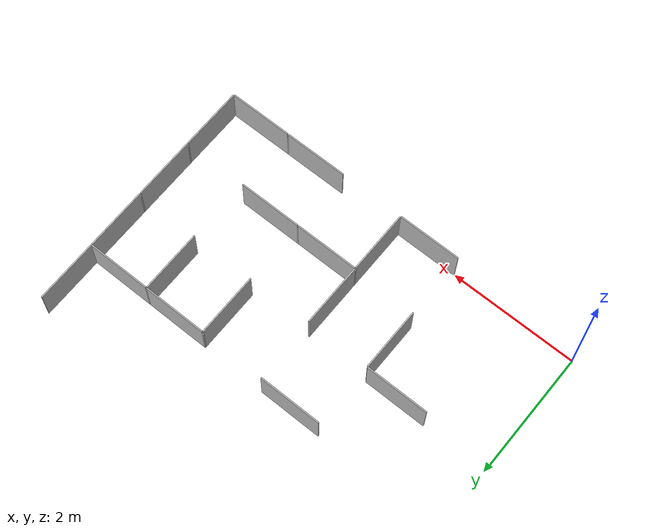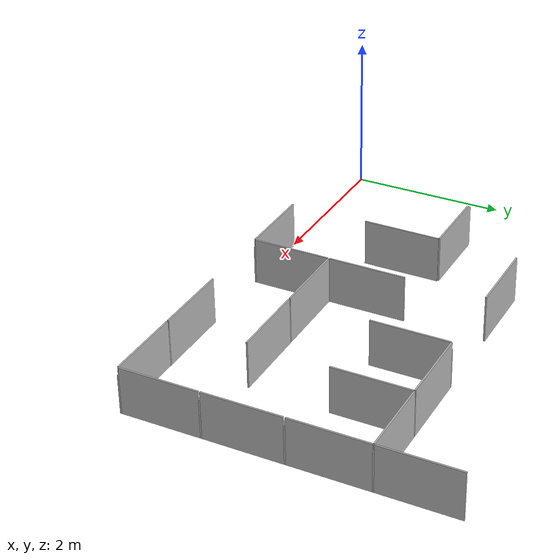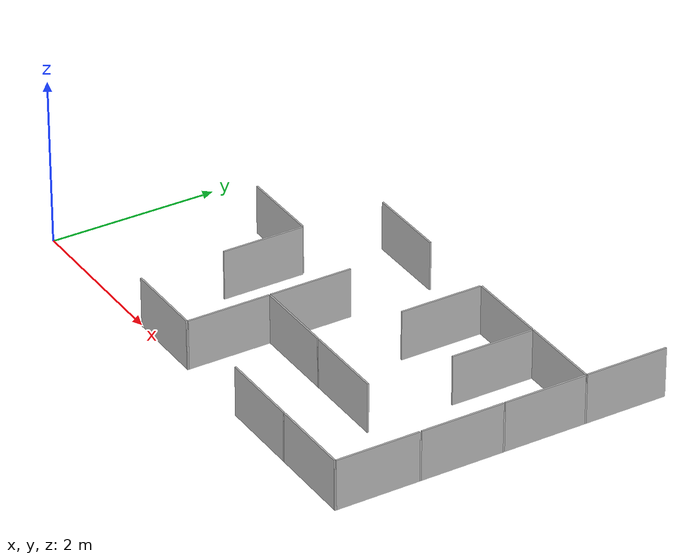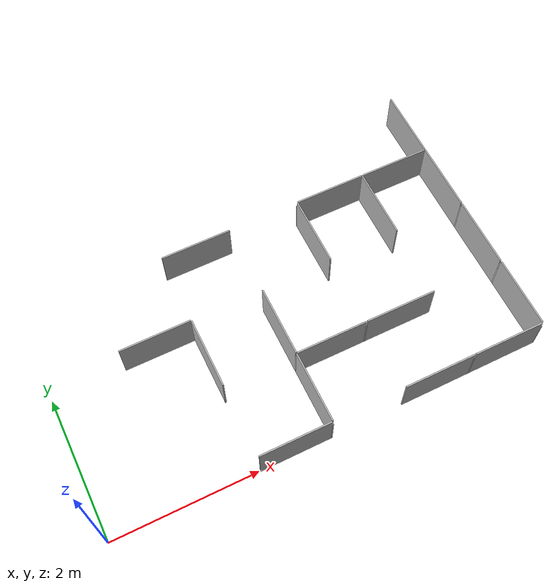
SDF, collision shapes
<sdf version="1.7">
 <model name="maze_midterm_validation">
  <link name="metal_joint_3_0_b::link">
   <pose>3 0 0.25 0 -0 0</pose>
   <visual name="visual_metal_joint_0">
    <geometry><box><size>0.02 0.02 0.5</size></box></geometry>
    <material>
     <script>
      <uri>model://metal_joint/materials/scripts</uri>
      <uri>model://metal_joint/materials/textures</uri>
      <name>metal_joint</name>
     </script>
     <shader type="pixel"/>
    </material>
   </visual>
   <collision name="metal_joint_01">
    <geometry><box><size>0.02 0.02 0.5</size></box></geometry>
    <surface>
     <friction>
      <ode><mu>1</mu><mu2>1</mu2><fdir1>0 0 0</fdir1><slip1>0</slip1><slip2>0</slip2></ode>
      <torsional>
       <coefficient>1</coefficient>
       <patch_radius>0</patch_radius>
       <surface_radius>0</surface_radius>
       <use_patch_radius>1</use_patch_radius>
       <ode><slip>0</slip></ode>
      </torsional>
     </friction>
     <bounce><restitution_coefficient>0</restitution_coefficient><threshold>1e+06</threshold></bounce>
     <contact>
      <collide_without_contact>0</collide_without_contact>
      <collide_without_contact_bitmask>1</collide_without_contact_bitmask>
      <collide_bitmask>1</collide_bitmask>
      <ode>
       <soft_cfm>0</soft_cfm>
       <soft_erp>0.2</soft_erp>
       <kp>1e+13</kp>
       <kd>1</kd>
       <max_vel>0.01</max_vel>
       <min_depth>0</min_depth>
      </ode>
      <bullet>
       <split_impulse>1</split_impulse>
       <split_impulse_penetration_threshold>-0.01</split_impulse_penetration_threshold>
       <soft_cfm>0</soft_cfm>
       <soft_erp>0.2</soft_erp>
       <kp>1e+13</kp>
       <kd>1</kd>
      </bullet>
     </contact>
    </surface>
   </collision>
  </link>
  <link name="metal_joint_3_1::link">
   <pose>3 1 0.25 0 -0 0</pose>
   <visual name="visual_metal_joint_0">
    <geometry><box><size>0.02 0.02 0.5</size></box></geometry>
    <material>
     <script>
      <uri>model://metal_joint/materials/scripts</uri>
      <uri>model://metal_joint/materials/textures</uri>
      <name>metal_joint</name>
     </script>
     <shader type="pixel"/>
    </material>
   </visual>
   <collision name="metal_joint_01">
    <geometry><box><size>0.02 0.02 0.5</size></box></geometry>
    <surface>
     <friction>
      <ode><mu>1</mu><mu2>1</mu2><fdir1>0 0 0</fdir1><slip1>0</slip1><slip2>0</slip2></ode>
      <torsional>
       <coefficient>1</coefficient>
       <patch_radius>0</patch_radius>
       <surface_radius>0</surface_radius>
       <use_patch_radius>1</use_patch_radius>
       <ode><slip>0</slip></ode>
      </torsional>
     </friction>
     <bounce><restitution_coefficient>0</restitution_coefficient><threshold>1e+06</threshold></bounce>
     <contact>
      <collide_without_contact>0</collide_without_contact>
      <collide_without_contact_bitmask>1</collide_without_contact_bitmask>
      <collide_bitmask>1</collide_bitmask>
      <ode>
       <soft_cfm>0</soft_cfm>
       <soft_erp>0.2</soft_erp>
       <kp>1e+13</kp>
       <kd>1</kd>
       <max_vel>0.01</max_vel>
       <min_depth>0</min_depth>
      </ode>
      <bullet>
       <split_impulse>1</split_impulse>
       <split_impulse_penetration_threshold>-0.01</split_impulse_penetration_threshold>
       <soft_cfm>0</soft_cfm>
       <soft_erp>0.2</soft_erp>
       <kp>1e+13</kp>
       <kd>1</kd>
      </bullet>
     </contact>
    </surface>
   </collision>
  </link>
  <link name="metal_joint_4_1::link">
   <pose>4 1 0.25 0 -0 0</pose>
   <visual name="visual_metal_joint_0">
    <geometry><box><size>0.02 0.02 0.5</size></box></geometry>
    <material>
     <script>
      <uri>model://metal_joint/materials/scripts</uri>
      <uri>model://metal_joint/materials/textures</uri>
      <name>metal_joint</name>
     </script>
     <shader type="pixel"/>
    </material>
   </visual>
   <collision name="metal_joint_01">
    <geometry><box><size>0.02 0.02 0.5</size></box></geometry>
    <surface>
     <friction>
      <ode><mu>1</mu><mu2>1</mu2><fdir1>0 0 0</fdir1><slip1>0</slip1><slip2>0</slip2></ode>
      <torsional>
       <coefficient>1</coefficient>
       <patch_radius>0</patch_radius>
       <surface_radius>0</surface_radius>
       <use_patch_radius>1</use_patch_radius>
       <ode><slip>0</slip></ode>
      </torsional>
     </friction>
     <bounce><restitution_coefficient>0</restitution_coefficient><threshold>1e+06</threshold></bounce>
     <contact>
      <collide_without_contact>0</collide_without_contact>
      <collide_without_contact_bitmask>1</collide_without_contact_bitmask>
      <collide_bitmask>1</collide_bitmask>
      <ode>
       <soft_cfm>0</soft_cfm>
       <soft_erp>0.2</soft_erp>
       <kp>1e+13</kp>
       <kd>1</kd>
       <max_vel>0.01</max_vel>
       <min_depth>0</min_depth>
      </ode>
      <bullet>
       <split_impulse>1</split_impulse>
       <split_impulse_penetration_threshold>-0.01</split_impulse_penetration_threshold>
       <soft_cfm>0</soft_cfm>
       <soft_erp>0.2</soft_erp>
       <kp>1e+13</kp>
       <kd>1</kd>
      </bullet>
     </contact>
    </surface>
   </collision>
  </link>
  <link name="metal_joint_4_3::link">
   <pose>4 3 0.25 0 -0 0</pose>
   <visual name="visual_metal_joint_0">
    <geometry><box><size>0.02 0.02 0.5</size></box></geometry>
    <material>
     <script>
      <uri>model://metal_joint/materials/scripts</uri>
      <uri>model://metal_joint/materials/textures</uri>
      <name>metal_joint</name>
     </script>
     <shader type="pixel"/>
    </material>
   </visual>
   <collision name="metal_joint_01">
    <geometry><box><size>0.02 0.02 0.5</size></box></geometry>
    <surface>
     <friction>
      <ode><mu>1</mu><mu2>1</mu2><fdir1>0 0 0</fdir1><slip1>0</slip1><slip2>0</slip2></ode>
      <torsional>
       <coefficient>1</coefficient>
       <patch_radius>0</patch_radius>
       <surface_radius>0</surface_radius>
       <use_patch_radius>1</use_patch_radius>
       <ode><slip>0</slip></ode>
      </torsional>
     </friction>
     <bounce><restitution_coefficient>0</restitution_coefficient><threshold>1e+06</threshold></bounce>
     <contact>
      <collide_without_contact>0</collide_without_contact>
      <collide_without_contact_bitmask>1</collide_without_contact_bitmask>
      <collide_bitmask>1</collide_bitmask>
      <ode>
       <soft_cfm>0</soft_cfm>
       <soft_erp>0.2</soft_erp>
       <kp>1e+13</kp>
       <kd>1</kd>
       <max_vel>0.01</max_vel>
       <min_depth>0</min_depth>
      </ode>
      <bullet>
       <split_impulse>1</split_impulse>
       <split_impulse_penetration_threshold>-0.01</split_impulse_penetration_threshold>
       <soft_cfm>0</soft_cfm>
       <soft_erp>0.2</soft_erp>
       <kp>1e+13</kp>
       <kd>1</kd>
      </bullet>
     </contact>
    </surface>
   </collision>
  </link>
  <link name="metal_joint_5_0_b::link">
   <pose>5 0 0.25 0 -0 0</pose>
   <visual name="visual_metal_joint_0">
    <geometry><box><size>0.02 0.02 0.5</size></box></geometry>
    <material>
     <script>
      <uri>model://metal_joint/materials/scripts</uri>
      <uri>model://metal_joint/materials/textures</uri>
      <name>metal_joint</name>
     </script>
     <shader type="pixel"/>
    </material>
   </visual>
   <collision name="metal_joint_01">
    <geometry><box><size>0.02 0.02 0.5</size></box></geometry>
    <surface>
     <friction>
      <ode><mu>1</mu><mu2>1</mu2><fdir1>0 0 0</fdir1><slip1>0</slip1><slip2>0</slip2></ode>
      <torsional>
       <coefficient>1</coefficient>
       <patch_radius>0</patch_radius>
       <surface_radius>0</surface_radius>
       <use_patch_radius>1</use_patch_radius>
       <ode><slip>0</slip></ode>
      </torsional>
     </friction>
     <bounce><restitution_coefficient>0</restitution_coefficient><threshold>1e+06</threshold></bounce>
     <contact>
      <collide_without_contact>0</collide_without_contact>
      <collide_without_contact_bitmask>1</collide_without_contact_bitmask>
      <collide_bitmask>1</collide_bitmask>
      <ode>
       <soft_cfm>0</soft_cfm>
       <soft_erp>0.2</soft_erp>
       <kp>1e+13</kp>
       <kd>1</kd>
       <max_vel>0.01</max_vel>
       <min_depth>0</min_depth>
      </ode>
      <bullet>
       <split_impulse>1</split_impulse>
       <split_impulse_penetration_threshold>-0.01</split_impulse_penetration_threshold>
       <soft_cfm>0</soft_cfm>
       <soft_erp>0.2</soft_erp>
       <kp>1e+13</kp>
       <kd>1</kd>
      </bullet>
     </contact>
    </surface>
   </collision>
  </link>
  <link name="metal_joint_5_3::link">
   <pose>5 3 0.25 0 -0 0</pose>
   <visual name="visual_metal_joint_0">
    <geometry><box><size>0.02 0.02 0.5</size></box></geometry>
    <material>
     <script>
      <uri>model://metal_joint/materials/scripts</uri>
      <uri>model://metal_joint/materials/textures</uri>
      <name>metal_joint</name>
     </script>
     <shader type="pixel"/>
    </material>
   </visual>
   <collision name="metal_joint_01">
    <geometry><box><size>0.02 0.02 0.5</size></box></geometry>
    <surface>
     <friction>
      <ode><mu>1</mu><mu2>1</mu2><fdir1>0 0 0</fdir1><slip1>0</slip1><slip2>0</slip2></ode>
      <torsional>
       <coefficient>1</coefficient>
       <patch_radius>0</patch_radius>
       <surface_radius>0</surface_radius>
       <use_patch_radius>1</use_patch_radius>
       <ode><slip>0</slip></ode>
      </torsional>
     </friction>
     <bounce><restitution_coefficient>0</restitution_coefficient><threshold>1e+06</threshold></bounce>
     <contact>
      <collide_without_contact>0</collide_without_contact>
      <collide_without_contact_bitmask>1</collide_without_contact_bitmask>
      <collide_bitmask>1</collide_bitmask>
      <ode>
       <soft_cfm>0</soft_cfm>
       <soft_erp>0.2</soft_erp>
       <kp>1e+13</kp>
       <kd>1</kd>
       <max_vel>0.01</max_vel>
       <min_depth>0</min_depth>
      </ode>
      <bullet>
       <split_impulse>1</split_impulse>
       <split_impulse_penetration_threshold>-0.01</split_impulse_penetration_threshold>
       <soft_cfm>0</soft_cfm>
       <soft_erp>0.2</soft_erp>
       <kp>1e+13</kp>
       <kd>1</kd>
      </bullet>
     </contact>
    </surface>
   </collision>
  </link>
  <link name="metal_joint_6_0_a::link">
   <pose>6 0 0.25 0 -0 0</pose>
   <visual name="visual_metal_joint_0">
    <geometry><box><size>0.02 0.02 0.5</size></box></geometry>
    <material>
     <script>
      <uri>model://metal_joint/materials/scripts</uri>
      <uri>model://metal_joint/materials/textures</uri>
      <name>metal_joint</name>
     </script>
     <shader type="pixel"/>
    </material>
   </visual>
   <collision name="metal_joint_01">
    <geometry><box><size>0.02 0.02 0.5</size></box></geometry>
    <surface>
     <friction>
      <ode><mu>1</mu><mu2>1</mu2><fdir1>0 0 0</fdir1><slip1>0</slip1><slip2>0</slip2></ode>
      <torsional>
       <coefficient>1</coefficient>
       <patch_radius>0</patch_radius>
       <surface_radius>0</surface_radius>
       <use_patch_radius>1</use_patch_radius>
       <ode><slip>0</slip></ode>
      </torsional>
     </friction>
     <bounce><restitution_coefficient>0</restitution_coefficient><threshold>1e+06</threshold></bounce>
     <contact>
      <collide_without_contact>0</collide_without_contact>
      <collide_without_contact_bitmask>1</collide_without_contact_bitmask>
      <collide_bitmask>1</collide_bitmask>
      <ode>
       <soft_cfm>0</soft_cfm>
       <soft_erp>0.2</soft_erp>
       <kp>1e+13</kp>
       <kd>1</kd>
       <max_vel>0.01</max_vel>
       <min_depth>0</min_depth>
      </ode>
      <bullet>
       <split_impulse>1</split_impulse>
       <split_impulse_penetration_threshold>-0.01</split_impulse_penetration_threshold>
       <soft_cfm>0</soft_cfm>
       <soft_erp>0.2</soft_erp>
       <kp>1e+13</kp>
       <kd>1</kd>
      </bullet>
     </contact>
    </surface>
   </collision>
  </link>
  <link name="metal_joint_6_1_a::link">
   <pose>6 1 0.25 0 -0 0</pose>
   <visual name="visual_metal_joint_0">
    <geometry><box><size>0.02 0.02 0.5</size></box></geometry>
    <material>
     <script>
      <uri>model://metal_joint/materials/scripts</uri>
      <uri>model://metal_joint/materials/textures</uri>
      <name>metal_joint</name>
     </script>
     <shader type="pixel"/>
    </material>
   </visual>
   <collision name="metal_joint_01">
    <geometry><box><size>0.02 0.02 0.5</size></box></geometry>
    <surface>
     <friction>
      <ode><mu>1</mu><mu2>1</mu2><fdir1>0 0 0</fdir1><slip1>0</slip1><slip2>0</slip2></ode>
      <torsional>
       <coefficient>1</coefficient>
       <patch_radius>0</patch_radius>
       <surface_radius>0</surface_radius>
       <use_patch_radius>1</use_patch_radius>
       <ode><slip>0</slip></ode>
      </torsional>
     </friction>
     <bounce><restitution_coefficient>0</restitution_coefficient><threshold>1e+06</threshold></bounce>
     <contact>
      <collide_without_contact>0</collide_without_contact>
      <collide_without_contact_bitmask>1</collide_without_contact_bitmask>
      <collide_bitmask>1</collide_bitmask>
      <ode>
       <soft_cfm>0</soft_cfm>
       <soft_erp>0.2</soft_erp>
       <kp>1e+13</kp>
       <kd>1</kd>
       <max_vel>0.01</max_vel>
       <min_depth>0</min_depth>
      </ode>
      <bullet>
       <split_impulse>1</split_impulse>
       <split_impulse_penetration_threshold>-0.01</split_impulse_penetration_threshold>
       <soft_cfm>0</soft_cfm>
       <soft_erp>0.2</soft_erp>
       <kp>1e+13</kp>
       <kd>1</kd>
      </bullet>
     </contact>
    </surface>
   </collision>
  </link>
  <link name="metal_joint_6_2_a::link">
   <pose>6 2 0.25 0 -0 0</pose>
   <visual name="visual_metal_joint_0">
    <geometry><box><size>0.02 0.02 0.5</size></box></geometry>
    <material>
     <script>
      <uri>model://metal_joint/materials/scripts</uri>
      <uri>model://metal_joint/materials/textures</uri>
      <name>metal_joint</name>
     </script>
     <shader type="pixel"/>
    </material>
   </visual>
   <collision name="metal_joint_01">
    <geometry><box><size>0.02 0.02 0.5</size></box></geometry>
    <surface>
     <friction>
      <ode><mu>1</mu><mu2>1</mu2><fdir1>0 0 0</fdir1><slip1>0</slip1><slip2>0</slip2></ode>
      <torsional>
       <coefficient>1</coefficient>
       <patch_radius>0</patch_radius>
       <surface_radius>0</surface_radius>
       <use_patch_radius>1</use_patch_radius>
       <ode><slip>0</slip></ode>
      </torsional>
     </friction>
     <bounce><restitution_coefficient>0</restitution_coefficient><threshold>1e+06</threshold></bounce>
     <contact>
      <collide_without_contact>0</collide_without_contact>
      <collide_without_contact_bitmask>1</collide_without_contact_bitmask>
      <collide_bitmask>1</collide_bitmask>
      <ode>
       <soft_cfm>0</soft_cfm>
       <soft_erp>0.2</soft_erp>
       <kp>1e+13</kp>
       <kd>1</kd>
       <max_vel>0.01</max_vel>
       <min_depth>0</min_depth>
      </ode>
      <bullet>
       <split_impulse>1</split_impulse>
       <split_impulse_penetration_threshold>-0.01</split_impulse_penetration_threshold>
       <soft_cfm>0</soft_cfm>
       <soft_erp>0.2</soft_erp>
       <kp>1e+13</kp>
       <kd>1</kd>
      </bullet>
     </contact>
    </surface>
   </collision>
  </link>
  <link name="metal_joint_6_3_a::link">
   <pose>6 3 0.25 0 -0 0</pose>
   <visual name="visual_metal_joint_0">
    <geometry><box><size>0.02 0.02 0.5</size></box></geometry>
    <material>
     <script>
      <uri>model://metal_joint/materials/scripts</uri>
      <uri>model://metal_joint/materials/textures</uri>
      <name>metal_joint</name>
     </script>
     <shader type="pixel"/>
    </material>
   </visual>
   <collision name="metal_joint_01">
    <geometry><box><size>0.02 0.02 0.5</size></box></geometry>
    <surface>
     <friction>
      <ode><mu>1</mu><mu2>1</mu2><fdir1>0 0 0</fdir1><slip1>0</slip1><slip2>0</slip2></ode>
      <torsional>
       <coefficient>1</coefficient>
       <patch_radius>0</patch_radius>
       <surface_radius>0</surface_radius>
       <use_patch_radius>1</use_patch_radius>
       <ode><slip>0</slip></ode>
      </torsional>
     </friction>
     <bounce><restitution_coefficient>0</restitution_coefficient><threshold>1e+06</threshold></bounce>
     <contact>
      <collide_without_contact>0</collide_without_contact>
      <collide_without_contact_bitmask>1</collide_without_contact_bitmask>
      <collide_bitmask>1</collide_bitmask>
      <ode>
       <soft_cfm>0</soft_cfm>
       <soft_erp>0.2</soft_erp>
       <kp>1e+13</kp>
       <kd>1</kd>
       <max_vel>0.01</max_vel>
       <min_depth>0</min_depth>
      </ode>
      <bullet>
       <split_impulse>1</split_impulse>
       <split_impulse_penetration_threshold>-0.01</split_impulse_penetration_threshold>
       <soft_cfm>0</soft_cfm>
       <soft_erp>0.2</soft_erp>
       <kp>1e+13</kp>
       <kd>1</kd>
      </bullet>
     </contact>
    </surface>
   </collision>
  </link>
  <link name="metal_plate_2_0_b::main">
   <pose>2 0 0 0 -0 1.571</pose>
   <visual name="visual">
    <pose>0.01 -0.01 0 3.14159 -1.57059 3.14159</pose>
    <geometry><mesh><scale>1 1 1</scale><uri>model://metal_plate/meshes/metal_plate.dae</uri></mesh></geometry>
    <material><shader type="pixel"/></material>
   </visual>
   <collision name="collision">
    <pose>0 -0.5 0.3 -1.571 -0 -1.571</pose>
    <geometry><box><size>0.98 0.6 0.02</size></box></geometry>
    <surface>
     <friction>
      <ode><mu>1</mu><mu2>1</mu2><fdir1>0 0 0</fdir1><slip1>0</slip1><slip2>0</slip2></ode>
      <torsional>
       <coefficient>1</coefficient>
       <patch_radius>0</patch_radius>
       <surface_radius>0</surface_radius>
       <use_patch_radius>1</use_patch_radius>
       <ode><slip>0</slip></ode>
      </torsional>
     </friction>
     <bounce><restitution_coefficient>0</restitution_coefficient><threshold>1e+06</threshold></bounce>
     <contact>
      <collide_without_contact>0</collide_without_contact>
      <collide_without_contact_bitmask>1</collide_without_contact_bitmask>
      <collide_bitmask>1</collide_bitmask>
      <ode>
       <soft_cfm>0</soft_cfm>
       <soft_erp>0.2</soft_erp>
       <kp>1e+13</kp>
       <kd>1</kd>
       <max_vel>0.01</max_vel>
       <min_depth>0</min_depth>
      </ode>
      <bullet>
       <split_impulse>1</split_impulse>
       <split_impulse_penetration_threshold>-0.01</split_impulse_penetration_threshold>
       <soft_cfm>0</soft_cfm>
       <soft_erp>0.2</soft_erp>
       <kp>1e+13</kp>
       <kd>1</kd>
      </bullet>
     </contact>
    </surface>
   </collision>
  </link>
  <link name="metal_plate_2_2_a::main">
   <pose>2 2 0 0 -0 0</pose>
   <visual name="visual">
    <pose>0.01 -0.01 0 3.14159 -1.57059 3.14159</pose>
    <geometry><mesh><scale>1 1 1</scale><uri>model://metal_plate/meshes/metal_plate.dae</uri></mesh></geometry>
    <material><shader type="pixel"/></material>
   </visual>
   <collision name="collision">
    <pose>0 -0.5 0.3 -1.571 -0 -1.571</pose>
    <geometry><box><size>0.98 0.6 0.02</size></box></geometry>
    <surface>
     <friction>
      <ode><mu>1</mu><mu2>1</mu2><fdir1>0 0 0</fdir1><slip1>0</slip1><slip2>0</slip2></ode>
      <torsional>
       <coefficient>1</coefficient>
       <patch_radius>0</patch_radius>
       <surface_radius>0</surface_radius>
       <use_patch_radius>1</use_patch_radius>
       <ode><slip>0</slip></ode>
      </torsional>
     </friction>
     <bounce><restitution_coefficient>0</restitution_coefficient><threshold>1e+06</threshold></bounce>
     <contact>
      <collide_without_contact>0</collide_without_contact>
      <collide_without_contact_bitmask>1</collide_without_contact_bitmask>
      <collide_bitmask>1</collide_bitmask>
      <ode>
       <soft_cfm>0</soft_cfm>
       <soft_erp>0.2</soft_erp>
       <kp>1e+13</kp>
       <kd>1</kd>
       <max_vel>0.01</max_vel>
       <min_depth>0</min_depth>
      </ode>
      <bullet>
       <split_impulse>1</split_impulse>
       <split_impulse_penetration_threshold>-0.01</split_impulse_penetration_threshold>
       <soft_cfm>0</soft_cfm>
       <soft_erp>0.2</soft_erp>
       <kp>1e+13</kp>
       <kd>1</kd>
      </bullet>
     </contact>
    </surface>
   </collision>
  </link>
  <link name="metal_plate_2_2_c::main">
   <pose>2 2 0 0 0 -1.5708</pose>
   <visual name="visual">
    <pose>0.01 -0.01 0 3.14159 -1.57059 3.14159</pose>
    <geometry><mesh><scale>1 1 1</scale><uri>model://metal_plate/meshes/metal_plate.dae</uri></mesh></geometry>
    <material><shader type="pixel"/></material>
   </visual>
   <collision name="collision">
    <pose>0 -0.5 0.3 -1.571 -0 -1.571</pose>
    <geometry><box><size>0.98 0.6 0.02</size></box></geometry>
    <surface>
     <friction>
      <ode><mu>1</mu><mu2>1</mu2><fdir1>0 0 0</fdir1><slip1>0</slip1><slip2>0</slip2></ode>
      <torsional>
       <coefficient>1</coefficient>
       <patch_radius>0</patch_radius>
       <surface_radius>0</surface_radius>
       <use_patch_radius>1</use_patch_radius>
       <ode><slip>0</slip></ode>
      </torsional>
     </friction>
     <bounce><restitution_coefficient>0</restitution_coefficient><threshold>1e+06</threshold></bounce>
     <contact>
      <collide_without_contact>0</collide_without_contact>
      <collide_without_contact_bitmask>1</collide_without_contact_bitmask>
      <collide_bitmask>1</collide_bitmask>
      <ode>
       <soft_cfm>0</soft_cfm>
       <soft_erp>0.2</soft_erp>
       <kp>1e+13</kp>
       <kd>1</kd>
       <max_vel>0.01</max_vel>
       <min_depth>0</min_depth>
      </ode>
      <bullet>
       <split_impulse>1</split_impulse>
       <split_impulse_penetration_threshold>-0.01</split_impulse_penetration_threshold>
       <soft_cfm>0</soft_cfm>
       <soft_erp>0.2</soft_erp>
       <kp>1e+13</kp>
       <kd>1</kd>
      </bullet>
     </contact>
    </surface>
   </collision>
  </link>
  <link name="metal_plate_3_1_a::main">
   <pose>3 1 0 0 -0 0</pose>
   <visual name="visual">
    <pose>0.01 -0.01 0 3.14159 -1.57059 3.14159</pose>
    <geometry><mesh><scale>1 1 1</scale><uri>model://metal_plate/meshes/metal_plate.dae</uri></mesh></geometry>
    <material><shader type="pixel"/></material>
   </visual>
   <collision name="collision">
    <pose>0 -0.5 0.3 -1.571 -0 -1.571</pose>
    <geometry><box><size>0.98 0.6 0.02</size></box></geometry>
    <surface>
     <friction>
      <ode><mu>1</mu><mu2>1</mu2><fdir1>0 0 0</fdir1><slip1>0</slip1><slip2>0</slip2></ode>
      <torsional>
       <coefficient>1</coefficient>
       <patch_radius>0</patch_radius>
       <surface_radius>0</surface_radius>
       <use_patch_radius>1</use_patch_radius>
       <ode><slip>0</slip></ode>
      </torsional>
     </friction>
     <bounce><restitution_coefficient>0</restitution_coefficient><threshold>1e+06</threshold></bounce>
     <contact>
      <collide_without_contact>0</collide_without_contact>
      <collide_without_contact_bitmask>1</collide_without_contact_bitmask>
      <collide_bitmask>1</collide_bitmask>
      <ode>
       <soft_cfm>0</soft_cfm>
       <soft_erp>0.2</soft_erp>
       <kp>1e+13</kp>
       <kd>1</kd>
       <max_vel>0.01</max_vel>
       <min_depth>0</min_depth>
      </ode>
      <bullet>
       <split_impulse>1</split_impulse>
       <split_impulse_penetration_threshold>-0.01</split_impulse_penetration_threshold>
       <soft_cfm>0</soft_cfm>
       <soft_erp>0.2</soft_erp>
       <kp>1e+13</kp>
       <kd>1</kd>
      </bullet>
     </contact>
    </surface>
   </collision>
  </link>
  <link name="metal_plate_3_2_a::main">
   <pose>3 2 0 0 -0 0</pose>
   <visual name="visual">
    <pose>0.01 -0.01 0 3.14159 -1.57059 3.14159</pose>
    <geometry><mesh><scale>1 1 1</scale><uri>model://metal_plate/meshes/metal_plate.dae</uri></mesh></geometry>
    <material><shader type="pixel"/></material>
   </visual>
   <collision name="collision">
    <pose>0 -0.5 0.3 -1.571 -0 -1.571</pose>
    <geometry><box><size>0.98 0.6 0.02</size></box></geometry>
    <surface>
     <friction>
      <ode><mu>1</mu><mu2>1</mu2><fdir1>0 0 0</fdir1><slip1>0</slip1><slip2>0</slip2></ode>
      <torsional>
       <coefficient>1</coefficient>
       <patch_radius>0</patch_radius>
       <surface_radius>0</surface_radius>
       <use_patch_radius>1</use_patch_radius>
       <ode><slip>0</slip></ode>
      </torsional>
     </friction>
     <bounce><restitution_coefficient>0</restitution_coefficient><threshold>1e+06</threshold></bounce>
     <contact>
      <collide_without_contact>0</collide_without_contact>
      <collide_without_contact_bitmask>1</collide_without_contact_bitmask>
      <collide_bitmask>1</collide_bitmask>
      <ode>
       <soft_cfm>0</soft_cfm>
       <soft_erp>0.2</soft_erp>
       <kp>1e+13</kp>
       <kd>1</kd>
       <max_vel>0.01</max_vel>
       <min_depth>0</min_depth>
      </ode>
      <bullet>
       <split_impulse>1</split_impulse>
       <split_impulse_penetration_threshold>-0.01</split_impulse_penetration_threshold>
       <soft_cfm>0</soft_cfm>
       <soft_erp>0.2</soft_erp>
       <kp>1e+13</kp>
       <kd>1</kd>
      </bullet>
     </contact>
    </surface>
   </collision>
  </link>
  <link name="metal_plate_3_3_c::main">
   <pose>3 3 0 0 0 -1.5708</pose>
   <visual name="visual">
    <pose>0.01 -0.01 0 3.14159 -1.57059 3.14159</pose>
    <geometry><mesh><scale>1 1 1</scale><uri>model://metal_plate/meshes/metal_plate.dae</uri></mesh></geometry>
    <material><shader type="pixel"/></material>
   </visual>
   <collision name="collision">
    <pose>0 -0.5 0.3 -1.571 -0 -1.571</pose>
    <geometry><box><size>0.98 0.6 0.02</size></box></geometry>
    <surface>
     <friction>
      <ode><mu>1</mu><mu2>1</mu2><fdir1>0 0 0</fdir1><slip1>0</slip1><slip2>0</slip2></ode>
      <torsional>
       <coefficient>1</coefficient>
       <patch_radius>0</patch_radius>
       <surface_radius>0</surface_radius>
       <use_patch_radius>1</use_patch_radius>
       <ode><slip>0</slip></ode>
      </torsional>
     </friction>
     <bounce><restitution_coefficient>0</restitution_coefficient><threshold>1e+06</threshold></bounce>
     <contact>
      <collide_without_contact>0</collide_without_contact>
      <collide_without_contact_bitmask>1</collide_without_contact_bitmask>
      <collide_bitmask>1</collide_bitmask>
      <ode>
       <soft_cfm>0</soft_cfm>
       <soft_erp>0.2</soft_erp>
       <kp>1e+13</kp>
       <kd>1</kd>
       <max_vel>0.01</max_vel>
       <min_depth>0</min_depth>
      </ode>
      <bullet>
       <split_impulse>1</split_impulse>
       <split_impulse_penetration_threshold>-0.01</split_impulse_penetration_threshold>
       <soft_cfm>0</soft_cfm>
       <soft_erp>0.2</soft_erp>
       <kp>1e+13</kp>
       <kd>1</kd>
      </bullet>
     </contact>
    </surface>
   </collision>
  </link>
  <link name="metal_plate_4_0_b::main">
   <pose>4 0 0 0 -0 1.571</pose>
   <visual name="visual">
    <pose>0.01 -0.01 0 3.14159 -1.57059 3.14159</pose>
    <geometry><mesh><scale>1 1 1</scale><uri>model://metal_plate/meshes/metal_plate.dae</uri></mesh></geometry>
    <material><shader type="pixel"/></material>
   </visual>
   <collision name="collision">
    <pose>0 -0.5 0.3 -1.571 -0 -1.571</pose>
    <geometry><box><size>0.98 0.6 0.02</size></box></geometry>
    <surface>
     <friction>
      <ode><mu>1</mu><mu2>1</mu2><fdir1>0 0 0</fdir1><slip1>0</slip1><slip2>0</slip2></ode>
      <torsional>
       <coefficient>1</coefficient>
       <patch_radius>0</patch_radius>
       <surface_radius>0</surface_radius>
       <use_patch_radius>1</use_patch_radius>
       <ode><slip>0</slip></ode>
      </torsional>
     </friction>
     <bounce><restitution_coefficient>0</restitution_coefficient><threshold>1e+06</threshold></bounce>
     <contact>
      <collide_without_contact>0</collide_without_contact>
      <collide_without_contact_bitmask>1</collide_without_contact_bitmask>
      <collide_bitmask>1</collide_bitmask>
      <ode>
       <soft_cfm>0</soft_cfm>
       <soft_erp>0.2</soft_erp>
       <kp>1e+13</kp>
       <kd>1</kd>
       <max_vel>0.01</max_vel>
       <min_depth>0</min_depth>
      </ode>
      <bullet>
       <split_impulse>1</split_impulse>
       <split_impulse_penetration_threshold>-0.01</split_impulse_penetration_threshold>
       <soft_cfm>0</soft_cfm>
       <soft_erp>0.2</soft_erp>
       <kp>1e+13</kp>
       <kd>1</kd>
      </bullet>
     </contact>
    </surface>
   </collision>
  </link>
  <link name="metal_plate_4_1_c::main">
   <pose>4 1 0 0 0 -1.5708</pose>
   <visual name="visual">
    <pose>0.01 -0.01 0 3.14159 -1.57059 3.14159</pose>
    <geometry><mesh><scale>1 1 1</scale><uri>model://metal_plate/meshes/metal_plate.dae</uri></mesh></geometry>
    <material><shader type="pixel"/></material>
   </visual>
   <collision name="collision">
    <pose>0 -0.5 0.3 -1.571 -0 -1.571</pose>
    <geometry><box><size>0.98 0.6 0.02</size></box></geometry>
    <surface>
     <friction>
      <ode><mu>1</mu><mu2>1</mu2><fdir1>0 0 0</fdir1><slip1>0</slip1><slip2>0</slip2></ode>
      <torsional>
       <coefficient>1</coefficient>
       <patch_radius>0</patch_radius>
       <surface_radius>0</surface_radius>
       <use_patch_radius>1</use_patch_radius>
       <ode><slip>0</slip></ode>
      </torsional>
     </friction>
     <bounce><restitution_coefficient>0</restitution_coefficient><threshold>1e+06</threshold></bounce>
     <contact>
      <collide_without_contact>0</collide_without_contact>
      <collide_without_contact_bitmask>1</collide_without_contact_bitmask>
      <collide_bitmask>1</collide_bitmask>
      <ode>
       <soft_cfm>0</soft_cfm>
       <soft_erp>0.2</soft_erp>
       <kp>1e+13</kp>
       <kd>1</kd>
       <max_vel>0.01</max_vel>
       <min_depth>0</min_depth>
      </ode>
      <bullet>
       <split_impulse>1</split_impulse>
       <split_impulse_penetration_threshold>-0.01</split_impulse_penetration_threshold>
       <soft_cfm>0</soft_cfm>
       <soft_erp>0.2</soft_erp>
       <kp>1e+13</kp>
       <kd>1</kd>
      </bullet>
     </contact>
    </surface>
   </collision>
  </link>
  <link name="metal_plate_4_3_a::main">
   <pose>4 3 0 0 -0 0</pose>
   <visual name="visual">
    <pose>0.01 -0.01 0 3.14159 -1.57059 3.14159</pose>
    <geometry><mesh><scale>1 1 1</scale><uri>model://metal_plate/meshes/metal_plate.dae</uri></mesh></geometry>
    <material><shader type="pixel"/></material>
   </visual>
   <collision name="collision">
    <pose>0 -0.5 0.3 -1.571 -0 -1.571</pose>
    <geometry><box><size>0.98 0.6 0.02</size></box></geometry>
    <surface>
     <friction>
      <ode><mu>1</mu><mu2>1</mu2><fdir1>0 0 0</fdir1><slip1>0</slip1><slip2>0</slip2></ode>
      <torsional>
       <coefficient>1</coefficient>
       <patch_radius>0</patch_radius>
       <surface_radius>0</surface_radius>
       <use_patch_radius>1</use_patch_radius>
       <ode><slip>0</slip></ode>
      </torsional>
     </friction>
     <bounce><restitution_coefficient>0</restitution_coefficient><threshold>1e+06</threshold></bounce>
     <contact>
      <collide_without_contact>0</collide_without_contact>
      <collide_without_contact_bitmask>1</collide_without_contact_bitmask>
      <collide_bitmask>1</collide_bitmask>
      <ode>
       <soft_cfm>0</soft_cfm>
       <soft_erp>0.2</soft_erp>
       <kp>1e+13</kp>
       <kd>1</kd>
       <max_vel>0.01</max_vel>
       <min_depth>0</min_depth>
      </ode>
      <bullet>
       <split_impulse>1</split_impulse>
       <split_impulse_penetration_threshold>-0.01</split_impulse_penetration_threshold>
       <soft_cfm>0</soft_cfm>
       <soft_erp>0.2</soft_erp>
       <kp>1e+13</kp>
       <kd>1</kd>
      </bullet>
     </contact>
    </surface>
   </collision>
  </link>
  <link name="metal_plate_5_0_b::main">
   <pose>5 0 0 0 -0 1.571</pose>
   <visual name="visual">
    <pose>0.01 -0.01 0 3.14159 -1.57059 3.14159</pose>
    <geometry><mesh><scale>1 1 1</scale><uri>model://metal_plate/meshes/metal_plate.dae</uri></mesh></geometry>
    <material><shader type="pixel"/></material>
   </visual>
   <collision name="collision">
    <pose>0 -0.5 0.3 -1.571 -0 -1.571</pose>
    <geometry><box><size>0.98 0.6 0.02</size></box></geometry>
    <surface>
     <friction>
      <ode><mu>1</mu><mu2>1</mu2><fdir1>0 0 0</fdir1><slip1>0</slip1><slip2>0</slip2></ode>
      <torsional>
       <coefficient>1</coefficient>
       <patch_radius>0</patch_radius>
       <surface_radius>0</surface_radius>
       <use_patch_radius>1</use_patch_radius>
       <ode><slip>0</slip></ode>
      </torsional>
     </friction>
     <bounce><restitution_coefficient>0</restitution_coefficient><threshold>1e+06</threshold></bounce>
     <contact>
      <collide_without_contact>0</collide_without_contact>
      <collide_without_contact_bitmask>1</collide_without_contact_bitmask>
      <collide_bitmask>1</collide_bitmask>
      <ode>
       <soft_cfm>0</soft_cfm>
       <soft_erp>0.2</soft_erp>
       <kp>1e+13</kp>
       <kd>1</kd>
       <max_vel>0.01</max_vel>
       <min_depth>0</min_depth>
      </ode>
      <bullet>
       <split_impulse>1</split_impulse>
       <split_impulse_penetration_threshold>-0.01</split_impulse_penetration_threshold>
       <soft_cfm>0</soft_cfm>
       <soft_erp>0.2</soft_erp>
       <kp>1e+13</kp>
       <kd>1</kd>
      </bullet>
     </contact>
    </surface>
   </collision>
  </link>
  <link name="metal_plate_5_1_c::main">
   <pose>5 1 0 0 0 -1.5708</pose>
   <visual name="visual">
    <pose>0.01 -0.01 0 3.14159 -1.57059 3.14159</pose>
    <geometry><mesh><scale>1 1 1</scale><uri>model://metal_plate/meshes/metal_plate.dae</uri></mesh></geometry>
    <material><shader type="pixel"/></material>
   </visual>
   <collision name="collision">
    <pose>0 -0.5 0.3 -1.571 -0 -1.571</pose>
    <geometry><box><size>0.98 0.6 0.02</size></box></geometry>
    <surface>
     <friction>
      <ode><mu>1</mu><mu2>1</mu2><fdir1>0 0 0</fdir1><slip1>0</slip1><slip2>0</slip2></ode>
      <torsional>
       <coefficient>1</coefficient>
       <patch_radius>0</patch_radius>
       <surface_radius>0</surface_radius>
       <use_patch_radius>1</use_patch_radius>
       <ode><slip>0</slip></ode>
      </torsional>
     </friction>
     <bounce><restitution_coefficient>0</restitution_coefficient><threshold>1e+06</threshold></bounce>
     <contact>
      <collide_without_contact>0</collide_without_contact>
      <collide_without_contact_bitmask>1</collide_without_contact_bitmask>
      <collide_bitmask>1</collide_bitmask>
      <ode>
       <soft_cfm>0</soft_cfm>
       <soft_erp>0.2</soft_erp>
       <kp>1e+13</kp>
       <kd>1</kd>
       <max_vel>0.01</max_vel>
       <min_depth>0</min_depth>
      </ode>
      <bullet>
       <split_impulse>1</split_impulse>
       <split_impulse_penetration_threshold>-0.01</split_impulse_penetration_threshold>
       <soft_cfm>0</soft_cfm>
       <soft_erp>0.2</soft_erp>
       <kp>1e+13</kp>
       <kd>1</kd>
      </bullet>
     </contact>
    </surface>
   </collision>
  </link>
  <link name="metal_plate_5_3_a::main">
   <pose>5 3 0 0 -0 0</pose>
   <visual name="visual">
    <pose>0.01 -0.01 0 3.14159 -1.57059 3.14159</pose>
    <geometry><mesh><scale>1 1 1</scale><uri>model://metal_plate/meshes/metal_plate.dae</uri></mesh></geometry>
    <material><shader type="pixel"/></material>
   </visual>
   <collision name="collision">
    <pose>0 -0.5 0.3 -1.571 -0 -1.571</pose>
    <geometry><box><size>0.98 0.6 0.02</size></box></geometry>
    <surface>
     <friction>
      <ode><mu>1</mu><mu2>1</mu2><fdir1>0 0 0</fdir1><slip1>0</slip1><slip2>0</slip2></ode>
      <torsional>
       <coefficient>1</coefficient>
       <patch_radius>0</patch_radius>
       <surface_radius>0</surface_radius>
       <use_patch_radius>1</use_patch_radius>
       <ode><slip>0</slip></ode>
      </torsional>
     </friction>
     <bounce><restitution_coefficient>0</restitution_coefficient><threshold>1e+06</threshold></bounce>
     <contact>
      <collide_without_contact>0</collide_without_contact>
      <collide_without_contact_bitmask>1</collide_without_contact_bitmask>
      <collide_bitmask>1</collide_bitmask>
      <ode>
       <soft_cfm>0</soft_cfm>
       <soft_erp>0.2</soft_erp>
       <kp>1e+13</kp>
       <kd>1</kd>
       <max_vel>0.01</max_vel>
       <min_depth>0</min_depth>
      </ode>
      <bullet>
       <split_impulse>1</split_impulse>
       <split_impulse_penetration_threshold>-0.01</split_impulse_penetration_threshold>
       <soft_cfm>0</soft_cfm>
       <soft_erp>0.2</soft_erp>
       <kp>1e+13</kp>
       <kd>1</kd>
      </bullet>
     </contact>
    </surface>
   </collision>
  </link>
  <link name="metal_plate_5_3_c::main">
   <pose>5 3 0 0 0 -1.5708</pose>
   <visual name="visual">
    <pose>0.01 -0.01 0 3.14159 -1.57059 3.14159</pose>
    <geometry><mesh><scale>1 1 1</scale><uri>model://metal_plate/meshes/metal_plate.dae</uri></mesh></geometry>
    <material><shader type="pixel"/></material>
   </visual>
   <collision name="collision">
    <pose>0 -0.5 0.3 -1.571 -0 -1.571</pose>
    <geometry><box><size>0.98 0.6 0.02</size></box></geometry>
    <surface>
     <friction>
      <ode><mu>1</mu><mu2>1</mu2><fdir1>0 0 0</fdir1><slip1>0</slip1><slip2>0</slip2></ode>
      <torsional>
       <coefficient>1</coefficient>
       <patch_radius>0</patch_radius>
       <surface_radius>0</surface_radius>
       <use_patch_radius>1</use_patch_radius>
       <ode><slip>0</slip></ode>
      </torsional>
     </friction>
     <bounce><restitution_coefficient>0</restitution_coefficient><threshold>1e+06</threshold></bounce>
     <contact>
      <collide_without_contact>0</collide_without_contact>
      <collide_without_contact_bitmask>1</collide_without_contact_bitmask>
      <collide_bitmask>1</collide_bitmask>
      <ode>
       <soft_cfm>0</soft_cfm>
       <soft_erp>0.2</soft_erp>
       <kp>1e+13</kp>
       <kd>1</kd>
       <max_vel>0.01</max_vel>
       <min_depth>0</min_depth>
      </ode>
      <bullet>
       <split_impulse>1</split_impulse>
       <split_impulse_penetration_threshold>-0.01</split_impulse_penetration_threshold>
       <soft_cfm>0</soft_cfm>
       <soft_erp>0.2</soft_erp>
       <kp>1e+13</kp>
       <kd>1</kd>
      </bullet>
     </contact>
    </surface>
   </collision>
  </link>
  <link name="metal_plate_6_0_a::main">
   <pose>6 0 0 0 -0 3.14159</pose>
   <visual name="visual">
    <pose>0.01 -0.01 0 3.14159 -1.57059 3.14159</pose>
    <geometry><mesh><scale>1 1 1</scale><uri>model://metal_plate/meshes/metal_plate.dae</uri></mesh></geometry>
    <material><shader type="pixel"/></material>
   </visual>
   <collision name="collision">
    <pose>0 -0.5 0.3 -1.571 -0 -1.571</pose>
    <geometry><box><size>0.98 0.6 0.02</size></box></geometry>
    <surface>
     <friction>
      <ode><mu>1</mu><mu2>1</mu2><fdir1>0 0 0</fdir1><slip1>0</slip1><slip2>0</slip2></ode>
      <torsional>
       <coefficient>1</coefficient>
       <patch_radius>0</patch_radius>
       <surface_radius>0</surface_radius>
       <use_patch_radius>1</use_patch_radius>
       <ode><slip>0</slip></ode>
      </torsional>
     </friction>
     <bounce><restitution_coefficient>0</restitution_coefficient><threshold>1e+06</threshold></bounce>
     <contact>
      <collide_without_contact>0</collide_without_contact>
      <collide_without_contact_bitmask>1</collide_without_contact_bitmask>
      <collide_bitmask>1</collide_bitmask>
      <ode>
       <soft_cfm>0</soft_cfm>
       <soft_erp>0.2</soft_erp>
       <kp>1e+13</kp>
       <kd>1</kd>
       <max_vel>0.01</max_vel>
       <min_depth>0</min_depth>
      </ode>
      <bullet>
       <split_impulse>1</split_impulse>
       <split_impulse_penetration_threshold>-0.01</split_impulse_penetration_threshold>
       <soft_cfm>0</soft_cfm>
       <soft_erp>0.2</soft_erp>
       <kp>1e+13</kp>
       <kd>1</kd>
      </bullet>
     </contact>
    </surface>
   </collision>
  </link>
  <link name="metal_plate_6_1_a::main">
   <pose>6 1 0 0 -0 3.14159</pose>
   <visual name="visual">
    <pose>0.01 -0.01 0 3.14159 -1.57059 3.14159</pose>
    <geometry><mesh><scale>1 1 1</scale><uri>model://metal_plate/meshes/metal_plate.dae</uri></mesh></geometry>
    <material><shader type="pixel"/></material>
   </visual>
   <collision name="collision">
    <pose>0 -0.5 0.3 -1.571 -0 -1.571</pose>
    <geometry><box><size>0.98 0.6 0.02</size></box></geometry>
    <surface>
     <friction>
      <ode><mu>1</mu><mu2>1</mu2><fdir1>0 0 0</fdir1><slip1>0</slip1><slip2>0</slip2></ode>
      <torsional>
       <coefficient>1</coefficient>
       <patch_radius>0</patch_radius>
       <surface_radius>0</surface_radius>
       <use_patch_radius>1</use_patch_radius>
       <ode><slip>0</slip></ode>
      </torsional>
     </friction>
     <bounce><restitution_coefficient>0</restitution_coefficient><threshold>1e+06</threshold></bounce>
     <contact>
      <collide_without_contact>0</collide_without_contact>
      <collide_without_contact_bitmask>1</collide_without_contact_bitmask>
      <collide_bitmask>1</collide_bitmask>
      <ode>
       <soft_cfm>0</soft_cfm>
       <soft_erp>0.2</soft_erp>
       <kp>1e+13</kp>
       <kd>1</kd>
       <max_vel>0.01</max_vel>
       <min_depth>0</min_depth>
      </ode>
      <bullet>
       <split_impulse>1</split_impulse>
       <split_impulse_penetration_threshold>-0.01</split_impulse_penetration_threshold>
       <soft_cfm>0</soft_cfm>
       <soft_erp>0.2</soft_erp>
       <kp>1e+13</kp>
       <kd>1</kd>
      </bullet>
     </contact>
    </surface>
   </collision>
  </link>
  <link name="metal_plate_6_2_a::main">
   <pose>6 2 0 0 -0 3.14159</pose>
   <visual name="visual">
    <pose>0.01 -0.01 0 3.14159 -1.57059 3.14159</pose>
    <geometry><mesh><scale>1 1 1</scale><uri>model://metal_plate/meshes/metal_plate.dae</uri></mesh></geometry>
    <material><shader type="pixel"/></material>
   </visual>
   <collision name="collision">
    <pose>0 -0.5 0.3 -1.571 -0 -1.571</pose>
    <geometry><box><size>0.98 0.6 0.02</size></box></geometry>
    <surface>
     <friction>
      <ode><mu>1</mu><mu2>1</mu2><fdir1>0 0 0</fdir1><slip1>0</slip1><slip2>0</slip2></ode>
      <torsional>
       <coefficient>1</coefficient>
       <patch_radius>0</patch_radius>
       <surface_radius>0</surface_radius>
       <use_patch_radius>1</use_patch_radius>
       <ode><slip>0</slip></ode>
      </torsional>
     </friction>
     <bounce><restitution_coefficient>0</restitution_coefficient><threshold>1e+06</threshold></bounce>
     <contact>
      <collide_without_contact>0</collide_without_contact>
      <collide_without_contact_bitmask>1</collide_without_contact_bitmask>
      <collide_bitmask>1</collide_bitmask>
      <ode>
       <soft_cfm>0</soft_cfm>
       <soft_erp>0.2</soft_erp>
       <kp>1e+13</kp>
       <kd>1</kd>
       <max_vel>0.01</max_vel>
       <min_depth>0</min_depth>
      </ode>
      <bullet>
       <split_impulse>1</split_impulse>
       <split_impulse_penetration_threshold>-0.01</split_impulse_penetration_threshold>
       <soft_cfm>0</soft_cfm>
       <soft_erp>0.2</soft_erp>
       <kp>1e+13</kp>
       <kd>1</kd>
      </bullet>
     </contact>
    </surface>
   </collision>
  </link>
  <link name="metal_plate_6_3_a::main">
   <pose>6 3 0 0 -0 3.14159</pose>
   <visual name="visual">
    <pose>0.01 -0.01 0 3.14159 -1.57059 3.14159</pose>
    <geometry><mesh><scale>1 1 1</scale><uri>model://metal_plate/meshes/metal_plate.dae</uri></mesh></geometry>
    <material><shader type="pixel"/></material>
   </visual>
   <collision name="collision">
    <pose>0 -0.5 0.3 -1.571 -0 -1.571</pose>
    <geometry><box><size>0.98 0.6 0.02</size></box></geometry>
    <surface>
     <friction>
      <ode><mu>1</mu><mu2>1</mu2><fdir1>0 0 0</fdir1><slip1>0</slip1><slip2>0</slip2></ode>
      <torsional>
       <coefficient>1</coefficient>
       <patch_radius>0</patch_radius>
       <surface_radius>0</surface_radius>
       <use_patch_radius>1</use_patch_radius>
       <ode><slip>0</slip></ode>
      </torsional>
     </friction>
     <bounce><restitution_coefficient>0</restitution_coefficient><threshold>1e+06</threshold></bounce>
     <contact>
      <collide_without_contact>0</collide_without_contact>
      <collide_without_contact_bitmask>1</collide_without_contact_bitmask>
      <collide_bitmask>1</collide_bitmask>
      <ode>
       <soft_cfm>0</soft_cfm>
       <soft_erp>0.2</soft_erp>
       <kp>1e+13</kp>
       <kd>1</kd>
       <max_vel>0.01</max_vel>
       <min_depth>0</min_depth>
      </ode>
      <bullet>
       <split_impulse>1</split_impulse>
       <split_impulse_penetration_threshold>-0.01</split_impulse_penetration_threshold>
       <soft_cfm>0</soft_cfm>
       <soft_erp>0.2</soft_erp>
       <kp>1e+13</kp>
       <kd>1</kd>
      </bullet>
     </contact>
    </surface>
   </collision>
  </link>
  <link name="metal_plate_6_3_c::main">
   <pose>6 3 0 0 0 -1.5708</pose>
   <visual name="visual">
    <pose>0.01 -0.01 0 3.14159 -1.57059 3.14159</pose>
    <geometry><mesh><scale>1 1 1</scale><uri>model://metal_plate/meshes/metal_plate.dae</uri></mesh></geometry>
    <material><shader type="pixel"/></material>
   </visual>
   <collision name="collision">
    <pose>0 -0.5 0.3 -1.571 -0 -1.571</pose>
    <geometry><box><size>0.98 0.6 0.02</size></box></geometry>
    <surface>
     <friction>
      <ode><mu>1</mu><mu2>1</mu2><fdir1>0 0 0</fdir1><slip1>0</slip1><slip2>0</slip2></ode>
      <torsional>
       <coefficient>1</coefficient>
       <patch_radius>0</patch_radius>
       <surface_radius>0</surface_radius>
       <use_patch_radius>1</use_patch_radius>
       <ode><slip>0</slip></ode>
      </torsional>
     </friction>
     <bounce><restitution_coefficient>0</restitution_coefficient><threshold>1e+06</threshold></bounce>
     <contact>
      <collide_without_contact>0</collide_without_contact>
      <collide_without_contact_bitmask>1</collide_without_contact_bitmask>
      <collide_bitmask>1</collide_bitmask>
      <ode>
       <soft_cfm>0</soft_cfm>
       <soft_erp>0.2</soft_erp>
       <kp>1e+13</kp>
       <kd>1</kd>
       <max_vel>0.01</max_vel>
       <min_depth>0</min_depth>
      </ode>
      <bullet>
       <split_impulse>1</split_impulse>
       <split_impulse_penetration_threshold>-0.01</split_impulse_penetration_threshold>
       <soft_cfm>0</soft_cfm>
       <soft_erp>0.2</soft_erp>
       <kp>1e+13</kp>
       <kd>1</kd>
      </bullet>
     </contact>
    </surface>
   </collision>
  </link>
  <static>1</static>
 </model>
</sdf>
